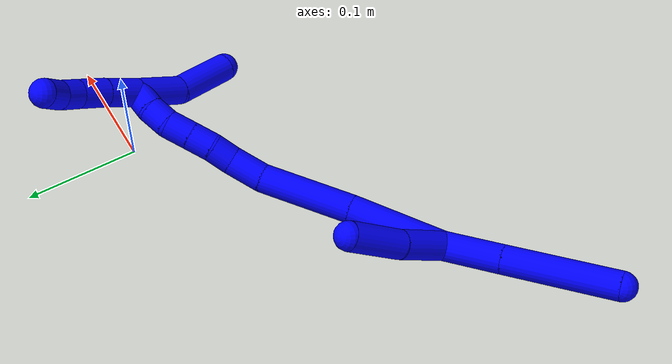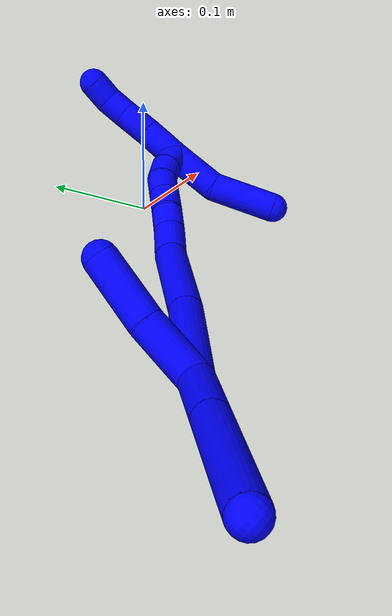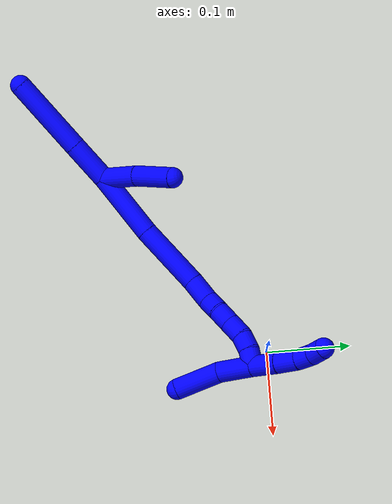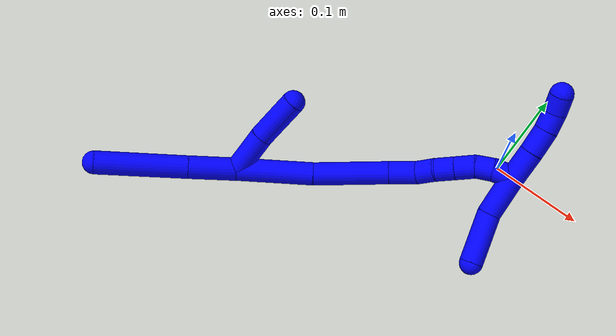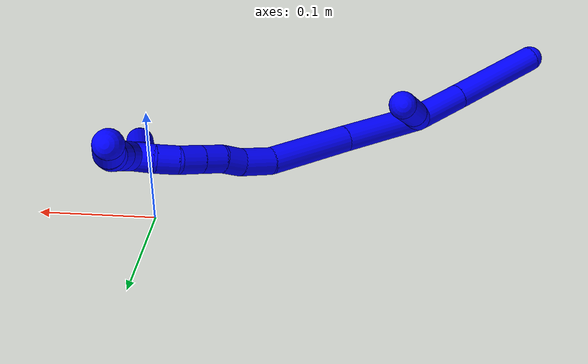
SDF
<sdf version="1.7">
 <world name="default">
  <model name="1">
   <static>0</static>
   <link name="1">
    <collision name="collision-cylinder-e_1_2_8">
     <pose>-0.017516 -0.015907 0.010958 0.96757 -0.736555 -0.400086</pose>
     <geometry><cylinder><radius>0.0125</radius><length>0.05215</length></cylinder></geometry>
     <surface>
      <friction><ode><mu>1.16</mu><mu2>1.16</mu2><slip1>0</slip1><slip2>0</slip2></ode></friction>
      <contact><ode><kp>1e+06</kp><kd>1</kd><max_vel>0</max_vel><min_depth>0.001</min_depth></ode></contact>
     </surface>
    </collision>
    <visual name="visual-cylinder-e_1_2_8">
     <pose>-0.017516 -0.015907 0.010958 0.96757 -0.736555 -0.400086</pose>
     <geometry><cylinder><radius>0.0125</radius><length>0.05215</length></cylinder></geometry>
     <material><ambient>0 0 1 1</ambient></material>
    </visual>
    <collision name="collision-cylinder-e_2_8_6">
     <pose>-0.06829 -0.061553 0.041992 0.977001 -0.747485 -0.41097</pose>
     <geometry><cylinder><radius>0.0125</radius><length>0.09785</length></cylinder></geometry>
     <surface>
      <friction><ode><mu>1.16</mu><mu2>1.16</mu2><slip1>0</slip1><slip2>0</slip2></ode></friction>
      <contact><ode><kp>1e+06</kp><kd>1</kd><max_vel>0</max_vel><min_depth>0.001</min_depth></ode></contact>
     </surface>
    </collision>
    <visual name="visual-cylinder-e_2_8_6">
     <pose>-0.06829 -0.061553 0.041992 0.977001 -0.747485 -0.41097</pose>
     <geometry><cylinder><radius>0.0125</radius><length>0.09785</length></cylinder></geometry>
     <material><ambient>0 0 1 1</ambient></material>
    </visual>
    <collision name="collision-cylinder-e_1_2_9">
     <pose>0.000178 0.003471 -0.023557 -2.99528 0.007477 -0.101935</pose>
     <geometry><cylinder><radius>0.0125</radius><length>0.047624</length></cylinder></geometry>
     <surface>
      <friction><ode><mu>1.16</mu><mu2>1.16</mu2><slip1>0</slip1><slip2>0</slip2></ode></friction>
      <contact><ode><kp>1e+06</kp><kd>1</kd><max_vel>0</max_vel><min_depth>0.001</min_depth></ode></contact>
     </surface>
    </collision>
    <visual name="visual-cylinder-e_1_2_9">
     <pose>0.000178 0.003471 -0.023557 -2.99528 0.007477 -0.101935</pose>
     <geometry><cylinder><radius>0.0125</radius><length>0.047624</length></cylinder></geometry>
     <material><ambient>0 0 1 1</ambient></material>
    </visual>
    <collision name="collision-cylinder-e_2_9_5">
     <pose>0.000384 0.013724 -0.072408 -2.87967 0.001083 -0.008225</pose>
     <geometry><cylinder><radius>0.0125</radius><length>0.052376</length></cylinder></geometry>
     <surface>
      <friction><ode><mu>1.16</mu><mu2>1.16</mu2><slip1>0</slip1><slip2>0</slip2></ode></friction>
      <contact><ode><kp>1e+06</kp><kd>1</kd><max_vel>0</max_vel><min_depth>0.001</min_depth></ode></contact>
     </surface>
    </collision>
    <visual name="visual-cylinder-e_2_9_5">
     <pose>0.000384 0.013724 -0.072408 -2.87967 0.001083 -0.008225</pose>
     <geometry><cylinder><radius>0.0125</radius><length>0.052376</length></cylinder></geometry>
     <material><ambient>0 0 1 1</ambient></material>
    </visual>
    <collision name="collision-cylinder-e_1_2_10">
     <pose>0.022192 0.029916 -0.018893 -2.13407 0.560178 -0.961979</pose>
     <geometry><cylinder><radius>0.0125</radius><length>0.083531</length></cylinder></geometry>
     <surface>
      <friction><ode><mu>1.16</mu><mu2>1.16</mu2><slip1>0</slip1><slip2>0</slip2></ode></friction>
      <contact><ode><kp>1e+06</kp><kd>1</kd><max_vel>0</max_vel><min_depth>0.001</min_depth></ode></contact>
     </surface>
    </collision>
    <visual name="visual-cylinder-e_1_2_10">
     <pose>0.022192 0.029916 -0.018893 -2.13407 0.560178 -0.961979</pose>
     <geometry><cylinder><radius>0.0125</radius><length>0.083531</length></cylinder></geometry>
     <material><ambient>0 0 1 1</ambient></material>
    </visual>
    <collision name="collision-cylinder-e_2_10_11">
     <pose>0.065736 0.087653 -0.059073 -2.22394 0.547401 -1.03361</pose>
     <geometry><cylinder><radius>0.0125</radius><length>0.082053</length></cylinder></geometry>
     <surface>
      <friction><ode><mu>1.16</mu><mu2>1.16</mu2><slip1>0</slip1><slip2>0</slip2></ode></friction>
      <contact><ode><kp>1e+06</kp><kd>1</kd><max_vel>0</max_vel><min_depth>0.001</min_depth></ode></contact>
     </surface>
    </collision>
    <visual name="visual-cylinder-e_2_10_11">
     <pose>0.065736 0.087653 -0.059073 -2.22394 0.547401 -1.03361</pose>
     <geometry><cylinder><radius>0.0125</radius><length>0.082053</length></cylinder></geometry>
     <material><ambient>0 0 1 1</ambient></material>
    </visual>
    <collision name="collision-cylinder-e_3_11_12">
     <pose>0.092022 0.127367 -0.088743 -2.18471 0.32692 -0.615797</pose>
     <geometry><cylinder><radius>0.0125</radius><length>0.030725</length></cylinder></geometry>
     <surface>
      <friction><ode><mu>1.16</mu><mu2>1.16</mu2><slip1>0</slip1><slip2>0</slip2></ode></friction>
      <contact><ode><kp>1e+06</kp><kd>1</kd><max_vel>0</max_vel><min_depth>0.001</min_depth></ode></contact>
     </surface>
    </collision>
    <visual name="visual-cylinder-e_3_11_12">
     <pose>0.092022 0.127367 -0.088743 -2.18471 0.32692 -0.615797</pose>
     <geometry><cylinder><radius>0.0125</radius><length>0.030725</length></cylinder></geometry>
     <material><ambient>0 0 1 1</ambient></material>
    </visual>
    <collision name="collision-cylinder-e_4_12_13">
     <pose>0.098087 0.146701 -0.103894 -2.30896 0.111927 -0.252056</pose>
     <geometry><cylinder><radius>0.0125</radius><length>0.020249</length></cylinder></geometry>
     <surface>
      <friction><ode><mu>1.16</mu><mu2>1.16</mu2><slip1>0</slip1><slip2>0</slip2></ode></friction>
      <contact><ode><kp>1e+06</kp><kd>1</kd><max_vel>0</max_vel><min_depth>0.001</min_depth></ode></contact>
     </surface>
    </collision>
    <visual name="visual-cylinder-e_4_12_13">
     <pose>0.098087 0.146701 -0.103894 -2.30896 0.111927 -0.252056</pose>
     <geometry><cylinder><radius>0.0125</radius><length>0.020249</length></cylinder></geometry>
     <material><ambient>0 0 1 1</ambient></material>
    </visual>
    <collision name="collision-cylinder-e_5_13_14">
     <pose>0.102333 0.161938 -0.117103 -2.26124 0.298958 -0.61896</pose>
     <geometry><cylinder><radius>0.0125</radius><length>0.021158</length></cylinder></geometry>
     <surface>
      <friction><ode><mu>1.16</mu><mu2>1.16</mu2><slip1>0</slip1><slip2>0</slip2></ode></friction>
      <contact><ode><kp>1e+06</kp><kd>1</kd><max_vel>0</max_vel><min_depth>0.001</min_depth></ode></contact>
     </surface>
    </collision>
    <visual name="visual-cylinder-e_5_13_14">
     <pose>0.102333 0.161938 -0.117103 -2.26124 0.298958 -0.61896</pose>
     <geometry><cylinder><radius>0.0125</radius><length>0.021158</length></cylinder></geometry>
     <material><ambient>0 0 1 1</ambient></material>
    </visual>
    <collision name="collision-cylinder-e_6_14_15">
     <pose>0.108758 0.177846 -0.130286 -2.26429 0.303878 -0.63097</pose>
     <geometry><cylinder><radius>0.0125</radius><length>0.022114</length></cylinder></geometry>
     <surface>
      <friction><ode><mu>1.16</mu><mu2>1.16</mu2><slip1>0</slip1><slip2>0</slip2></ode></friction>
      <contact><ode><kp>1e+06</kp><kd>1</kd><max_vel>0</max_vel><min_depth>0.001</min_depth></ode></contact>
     </surface>
    </collision>
    <visual name="visual-cylinder-e_6_14_15">
     <pose>0.108758 0.177846 -0.130286 -2.26429 0.303878 -0.63097</pose>
     <geometry><cylinder><radius>0.0125</radius><length>0.022114</length></cylinder></geometry>
     <material><ambient>0 0 1 1</ambient></material>
    </visual>
    <collision name="collision-cylinder-e_7_15_16">
     <pose>0.114678 0.19485 -0.140872 -1.97871 0.263448 -0.397849</pose>
     <geometry><cylinder><radius>0.0125</radius><length>0.020063</length></cylinder></geometry>
     <surface>
      <friction><ode><mu>1.16</mu><mu2>1.16</mu2><slip1>0</slip1><slip2>0</slip2></ode></friction>
      <contact><ode><kp>1e+06</kp><kd>1</kd><max_vel>0</max_vel><min_depth>0.001</min_depth></ode></contact>
     </surface>
    </collision>
    <visual name="visual-cylinder-e_7_15_16">
     <pose>0.114678 0.19485 -0.140872 -1.97871 0.263448 -0.397849</pose>
     <geometry><cylinder><radius>0.0125</radius><length>0.020063</length></cylinder></geometry>
     <material><ambient>0 0 1 1</ambient></material>
    </visual>
    <collision name="collision-cylinder-e_8_16_1">
     <pose>0.119567 0.213383 -0.14642 -1.74588 0.228389 -0.271839</pose>
     <geometry><cylinder><radius>0.0125</radius><length>0.020107</length></cylinder></geometry>
     <surface>
      <friction><ode><mu>1.16</mu><mu2>1.16</mu2><slip1>0</slip1><slip2>0</slip2></ode></friction>
      <contact><ode><kp>1e+06</kp><kd>1</kd><max_vel>0</max_vel><min_depth>0.001</min_depth></ode></contact>
     </surface>
    </collision>
    <visual name="visual-cylinder-e_8_16_1">
     <pose>0.119567 0.213383 -0.14642 -1.74588 0.228389 -0.271839</pose>
     <geometry><cylinder><radius>0.0125</radius><length>0.020107</length></cylinder></geometry>
     <material><ambient>0 0 1 1</ambient></material>
    </visual>
    <collision name="collision-cylinder-e_1_1_17">
     <pose>0.121469 0.22319 -0.125755 -0.007333 -0.016724 6.1e-05</pose>
     <geometry><cylinder><radius>0.0125</radius><length>0.04475</length></cylinder></geometry>
     <surface>
      <friction><ode><mu>1.16</mu><mu2>1.16</mu2><slip1>0</slip1><slip2>0</slip2></ode></friction>
      <contact><ode><kp>1e+06</kp><kd>1</kd><max_vel>0</max_vel><min_depth>0.001</min_depth></ode></contact>
     </surface>
    </collision>
    <visual name="visual-cylinder-e_1_1_17">
     <pose>0.121469 0.22319 -0.125755 -0.007333 -0.016724 6.1e-05</pose>
     <geometry><cylinder><radius>0.0125</radius><length>0.04475</length></cylinder></geometry>
     <material><ambient>0 0 1 1</ambient></material>
    </visual>
    <collision name="collision-cylinder-e_2_17_4">
     <pose>0.11642 0.231851 -0.077517 -0.317363 -0.170048 0.027276</pose>
     <geometry><cylinder><radius>0.0125</radius><length>0.05525</length></cylinder></geometry>
     <surface>
      <friction><ode><mu>1.16</mu><mu2>1.16</mu2><slip1>0</slip1><slip2>0</slip2></ode></friction>
      <contact><ode><kp>1e+06</kp><kd>1</kd><max_vel>0</max_vel><min_depth>0.001</min_depth></ode></contact>
     </surface>
    </collision>
    <visual name="visual-cylinder-e_2_17_4">
     <pose>0.11642 0.231851 -0.077517 -0.317363 -0.170048 0.027276</pose>
     <geometry><cylinder><radius>0.0125</radius><length>0.05525</length></cylinder></geometry>
     <material><ambient>0 0 1 1</ambient></material>
    </visual>
    <collision name="collision-cylinder-e_1_1_18">
     <pose>0.122066 0.223732 -0.164499 -3.09848 0.013572 -0.609798</pose>
     <geometry><cylinder><radius>0.0125</radius><length>0.032778</length></cylinder></geometry>
     <surface>
      <friction><ode><mu>1.16</mu><mu2>1.16</mu2><slip1>0</slip1><slip2>0</slip2></ode></friction>
      <contact><ode><kp>1e+06</kp><kd>1</kd><max_vel>0</max_vel><min_depth>0.001</min_depth></ode></contact>
     </surface>
    </collision>
    <visual name="visual-cylinder-e_1_1_18">
     <pose>0.122066 0.223732 -0.164499 -3.09848 0.013572 -0.609798</pose>
     <geometry><cylinder><radius>0.0125</radius><length>0.032778</length></cylinder></geometry>
     <material><ambient>0 0 1 1</ambient></material>
    </visual>
    <collision name="collision-cylinder-e_2_18_19">
     <pose>0.122549 0.224367 -0.194387 3.13627 0.019335 2.60448</pose>
     <geometry><cylinder><radius>0.0125</radius><length>0.027038</length></cylinder></geometry>
     <surface>
      <friction><ode><mu>1.16</mu><mu2>1.16</mu2><slip1>0</slip1><slip2>0</slip2></ode></friction>
      <contact><ode><kp>1e+06</kp><kd>1</kd><max_vel>0</max_vel><min_depth>0.001</min_depth></ode></contact>
     </surface>
    </collision>
    <visual name="visual-cylinder-e_2_18_19">
     <pose>0.122549 0.224367 -0.194387 3.13627 0.019335 2.60448</pose>
     <geometry><cylinder><radius>0.0125</radius><length>0.027038</length></cylinder></geometry>
     <material><ambient>0 0 1 1</ambient></material>
    </visual>
    <collision name="collision-cylinder-e_3_19_20">
     <pose>0.121604 0.223399 -0.217812 3.05139 -0.120728 -1.8588</pose>
     <geometry><cylinder><radius>0.0125</radius><length>0.020044</length></cylinder></geometry>
     <surface>
      <friction><ode><mu>1.16</mu><mu2>1.16</mu2><slip1>0</slip1><slip2>0</slip2></ode></friction>
      <contact><ode><kp>1e+06</kp><kd>1</kd><max_vel>0</max_vel><min_depth>0.001</min_depth></ode></contact>
     </surface>
    </collision>
    <visual name="visual-cylinder-e_3_19_20">
     <pose>0.121604 0.223399 -0.217812 3.05139 -0.120728 -1.8588</pose>
     <geometry><cylinder><radius>0.0125</radius><length>0.020044</length></cylinder></geometry>
     <material><ambient>0 0 1 1</ambient></material>
    </visual>
    <collision name="collision-cylinder-e_4_20_3">
     <pose>0.116711 0.221653 -0.237053 3.05077 -0.374688 -2.67104</pose>
     <geometry><cylinder><radius>0.0125</radius><length>0.02014</length></cylinder></geometry>
     <surface>
      <friction><ode><mu>1.16</mu><mu2>1.16</mu2><slip1>0</slip1><slip2>0</slip2></ode></friction>
      <contact><ode><kp>1e+06</kp><kd>1</kd><max_vel>0</max_vel><min_depth>0.001</min_depth></ode></contact>
     </surface>
    </collision>
    <visual name="visual-cylinder-e_4_20_3">
     <pose>0.116711 0.221653 -0.237053 3.05077 -0.374688 -2.67104</pose>
     <geometry><cylinder><radius>0.0125</radius><length>0.02014</length></cylinder></geometry>
     <material><ambient>0 0 1 1</ambient></material>
    </visual>
    <collision name="collision-sphere-3">
     <pose>0.113026 0.220803 -0.246386 0 -0 0</pose>
     <geometry><sphere><radius>0.0125</radius></sphere></geometry>
     <surface>
      <friction><ode><mu>1.16</mu><mu2>1.16</mu2><slip1>0</slip1><slip2>0</slip2></ode></friction>
      <contact><ode><kp>1e+06</kp><kd>1</kd><max_vel>0</max_vel><min_depth>0.001</min_depth></ode></contact>
     </surface>
    </collision>
    <visual name="visual-sphere-3">
     <pose>0.113026 0.220803 -0.246386 0 -0 0</pose>
     <geometry><sphere><radius>0.0125</radius></sphere></geometry>
     <material><ambient>0 0 1 1</ambient></material>
    </visual>
    <collision name="collision-sphere-20">
     <pose>0.120397 0.222503 -0.227721 0 -0 0</pose>
     <geometry><sphere><radius>0.0125</radius></sphere></geometry>
     <surface>
      <friction><ode><mu>1.16</mu><mu2>1.16</mu2><slip1>0</slip1><slip2>0</slip2></ode></friction>
      <contact><ode><kp>1e+06</kp><kd>1</kd><max_vel>0</max_vel><min_depth>0.001</min_depth></ode></contact>
     </surface>
    </collision>
    <visual name="visual-sphere-20">
     <pose>0.120397 0.222503 -0.227721 0 -0 0</pose>
     <geometry><sphere><radius>0.0125</radius></sphere></geometry>
     <material><ambient>0 0 1 1</ambient></material>
    </visual>
    <collision name="collision-sphere-19">
     <pose>0.122811 0.224295 -0.207904 0 -0 0</pose>
     <geometry><sphere><radius>0.0125</radius></sphere></geometry>
     <surface>
      <friction><ode><mu>1.16</mu><mu2>1.16</mu2><slip1>0</slip1><slip2>0</slip2></ode></friction>
      <contact><ode><kp>1e+06</kp><kd>1</kd><max_vel>0</max_vel><min_depth>0.001</min_depth></ode></contact>
     </surface>
    </collision>
    <visual name="visual-sphere-19">
     <pose>0.122811 0.224295 -0.207904 0 -0 0</pose>
     <geometry><sphere><radius>0.0125</radius></sphere></geometry>
     <material><ambient>0 0 1 1</ambient></material>
    </visual>
    <collision name="collision-sphere-10">
     <pose>0.044383 0.059832 -0.037785 0 -0 0</pose>
     <geometry><sphere><radius>0.0125</radius></sphere></geometry>
     <surface>
      <friction><ode><mu>1.16</mu><mu2>1.16</mu2><slip1>0</slip1><slip2>0</slip2></ode></friction>
      <contact><ode><kp>1e+06</kp><kd>1</kd><max_vel>0</max_vel><min_depth>0.001</min_depth></ode></contact>
     </surface>
    </collision>
    <visual name="visual-sphere-10">
     <pose>0.044383 0.059832 -0.037785 0 -0 0</pose>
     <geometry><sphere><radius>0.0125</radius></sphere></geometry>
     <material><ambient>0 0 1 1</ambient></material>
    </visual>
    <collision name="collision-sphere-5">
     <pose>0.000413 0.020505 -0.097703 0 -0 0</pose>
     <geometry><sphere><radius>0.0125</radius></sphere></geometry>
     <surface>
      <friction><ode><mu>1.16</mu><mu2>1.16</mu2><slip1>0</slip1><slip2>0</slip2></ode></friction>
      <contact><ode><kp>1e+06</kp><kd>1</kd><max_vel>0</max_vel><min_depth>0.001</min_depth></ode></contact>
     </surface>
    </collision>
    <visual name="visual-sphere-5">
     <pose>0.000413 0.020505 -0.097703 0 -0 0</pose>
     <geometry><sphere><radius>0.0125</radius></sphere></geometry>
     <material><ambient>0 0 1 1</ambient></material>
    </visual>
    <collision name="collision-sphere-6">
     <pose>-0.101549 -0.091293 0.062068 0 -0 0</pose>
     <geometry><sphere><radius>0.0125</radius></sphere></geometry>
     <surface>
      <friction><ode><mu>1.16</mu><mu2>1.16</mu2><slip1>0</slip1><slip2>0</slip2></ode></friction>
      <contact><ode><kp>1e+06</kp><kd>1</kd><max_vel>0</max_vel><min_depth>0.001</min_depth></ode></contact>
     </surface>
    </collision>
    <visual name="visual-sphere-6">
     <pose>-0.101549 -0.091293 0.062068 0 -0 0</pose>
     <geometry><sphere><radius>0.0125</radius></sphere></geometry>
     <material><ambient>0 0 1 1</ambient></material>
    </visual>
    <collision name="collision-sphere-9">
     <pose>0.000356 0.006943 -0.047113 0 -0 0</pose>
     <geometry><sphere><radius>0.0125</radius></sphere></geometry>
     <surface>
      <friction><ode><mu>1.16</mu><mu2>1.16</mu2><slip1>0</slip1><slip2>0</slip2></ode></friction>
      <contact><ode><kp>1e+06</kp><kd>1</kd><max_vel>0</max_vel><min_depth>0.001</min_depth></ode></contact>
     </surface>
    </collision>
    <visual name="visual-sphere-9">
     <pose>0.000356 0.006943 -0.047113 0 -0 0</pose>
     <geometry><sphere><radius>0.0125</radius></sphere></geometry>
     <material><ambient>0 0 1 1</ambient></material>
    </visual>
    <collision name="collision-sphere-2">
     <geometry><sphere><radius>0.0125</radius></sphere></geometry>
     <surface>
      <friction><ode><mu>1.16</mu><mu2>1.16</mu2><slip1>0</slip1><slip2>0</slip2></ode></friction>
      <contact><ode><kp>1e+06</kp><kd>1</kd><max_vel>0</max_vel><min_depth>0.001</min_depth></ode></contact>
     </surface>
    </collision>
    <visual name="visual-sphere-2">
     <geometry><sphere><radius>0.0125</radius></sphere></geometry>
     <material><ambient>0 0 1 1</ambient></material>
    </visual>
    <collision name="collision-sphere-8">
     <pose>-0.035031 -0.031814 0.021916 0 -0 0</pose>
     <geometry><sphere><radius>0.0125</radius></sphere></geometry>
     <surface>
      <friction><ode><mu>1.16</mu><mu2>1.16</mu2><slip1>0</slip1><slip2>0</slip2></ode></friction>
      <contact><ode><kp>1e+06</kp><kd>1</kd><max_vel>0</max_vel><min_depth>0.001</min_depth></ode></contact>
     </surface>
    </collision>
    <visual name="visual-sphere-8">
     <pose>-0.035031 -0.031814 0.021916 0 -0 0</pose>
     <geometry><sphere><radius>0.0125</radius></sphere></geometry>
     <material><ambient>0 0 1 1</ambient></material>
    </visual>
    <collision name="collision-sphere-11">
     <pose>0.087089 0.115474 -0.080361 0 -0 0</pose>
     <geometry><sphere><radius>0.0125</radius></sphere></geometry>
     <surface>
      <friction><ode><mu>1.16</mu><mu2>1.16</mu2><slip1>0</slip1><slip2>0</slip2></ode></friction>
      <contact><ode><kp>1e+06</kp><kd>1</kd><max_vel>0</max_vel><min_depth>0.001</min_depth></ode></contact>
     </surface>
    </collision>
    <visual name="visual-sphere-11">
     <pose>0.087089 0.115474 -0.080361 0 -0 0</pose>
     <geometry><sphere><radius>0.0125</radius></sphere></geometry>
     <material><ambient>0 0 1 1</ambient></material>
    </visual>
    <collision name="collision-sphere-12">
     <pose>0.096956 0.139259 -0.097124 0 -0 0</pose>
     <geometry><sphere><radius>0.0125</radius></sphere></geometry>
     <surface>
      <friction><ode><mu>1.16</mu><mu2>1.16</mu2><slip1>0</slip1><slip2>0</slip2></ode></friction>
      <contact><ode><kp>1e+06</kp><kd>1</kd><max_vel>0</max_vel><min_depth>0.001</min_depth></ode></contact>
     </surface>
    </collision>
    <visual name="visual-sphere-12">
     <pose>0.096956 0.139259 -0.097124 0 -0 0</pose>
     <geometry><sphere><radius>0.0125</radius></sphere></geometry>
     <material><ambient>0 0 1 1</ambient></material>
    </visual>
    <collision name="collision-sphere-13">
     <pose>0.099217 0.154143 -0.110664 0 -0 0</pose>
     <geometry><sphere><radius>0.0125</radius></sphere></geometry>
     <surface>
      <friction><ode><mu>1.16</mu><mu2>1.16</mu2><slip1>0</slip1><slip2>0</slip2></ode></friction>
      <contact><ode><kp>1e+06</kp><kd>1</kd><max_vel>0</max_vel><min_depth>0.001</min_depth></ode></contact>
     </surface>
    </collision>
    <visual name="visual-sphere-13">
     <pose>0.099217 0.154143 -0.110664 0 -0 0</pose>
     <geometry><sphere><radius>0.0125</radius></sphere></geometry>
     <material><ambient>0 0 1 1</ambient></material>
    </visual>
    <collision name="collision-sphere-14">
     <pose>0.105449 0.169732 -0.123542 0 -0 0</pose>
     <geometry><sphere><radius>0.0125</radius></sphere></geometry>
     <surface>
      <friction><ode><mu>1.16</mu><mu2>1.16</mu2><slip1>0</slip1><slip2>0</slip2></ode></friction>
      <contact><ode><kp>1e+06</kp><kd>1</kd><max_vel>0</max_vel><min_depth>0.001</min_depth></ode></contact>
     </surface>
    </collision>
    <visual name="visual-sphere-14">
     <pose>0.105449 0.169732 -0.123542 0 -0 0</pose>
     <geometry><sphere><radius>0.0125</radius></sphere></geometry>
     <material><ambient>0 0 1 1</ambient></material>
    </visual>
    <collision name="collision-sphere-15">
     <pose>0.112066 0.185959 -0.13703 0 -0 0</pose>
     <geometry><sphere><radius>0.0125</radius></sphere></geometry>
     <surface>
      <friction><ode><mu>1.16</mu><mu2>1.16</mu2><slip1>0</slip1><slip2>0</slip2></ode></friction>
      <contact><ode><kp>1e+06</kp><kd>1</kd><max_vel>0</max_vel><min_depth>0.001</min_depth></ode></contact>
     </surface>
    </collision>
    <visual name="visual-sphere-15">
     <pose>0.112066 0.185959 -0.13703 0 -0 0</pose>
     <geometry><sphere><radius>0.0125</radius></sphere></geometry>
     <material><ambient>0 0 1 1</ambient></material>
    </visual>
    <collision name="collision-sphere-16">
     <pose>0.117291 0.20374 -0.144715 0 -0 0</pose>
     <geometry><sphere><radius>0.0125</radius></sphere></geometry>
     <surface>
      <friction><ode><mu>1.16</mu><mu2>1.16</mu2><slip1>0</slip1><slip2>0</slip2></ode></friction>
      <contact><ode><kp>1e+06</kp><kd>1</kd><max_vel>0</max_vel><min_depth>0.001</min_depth></ode></contact>
     </surface>
    </collision>
    <visual name="visual-sphere-16">
     <pose>0.117291 0.20374 -0.144715 0 -0 0</pose>
     <geometry><sphere><radius>0.0125</radius></sphere></geometry>
     <material><ambient>0 0 1 1</ambient></material>
    </visual>
    <collision name="collision-sphere-1">
     <pose>0.121843 0.223026 -0.148126 0 -0 0</pose>
     <geometry><sphere><radius>0.0125</radius></sphere></geometry>
     <surface>
      <friction><ode><mu>1.16</mu><mu2>1.16</mu2><slip1>0</slip1><slip2>0</slip2></ode></friction>
      <contact><ode><kp>1e+06</kp><kd>1</kd><max_vel>0</max_vel><min_depth>0.001</min_depth></ode></contact>
     </surface>
    </collision>
    <visual name="visual-sphere-1">
     <pose>0.121843 0.223026 -0.148126 0 -0 0</pose>
     <geometry><sphere><radius>0.0125</radius></sphere></geometry>
     <material><ambient>0 0 1 1</ambient></material>
    </visual>
    <collision name="collision-sphere-18">
     <pose>0.122288 0.224439 -0.180871 0 -0 0</pose>
     <geometry><sphere><radius>0.0125</radius></sphere></geometry>
     <surface>
      <friction><ode><mu>1.16</mu><mu2>1.16</mu2><slip1>0</slip1><slip2>0</slip2></ode></friction>
      <contact><ode><kp>1e+06</kp><kd>1</kd><max_vel>0</max_vel><min_depth>0.001</min_depth></ode></contact>
     </surface>
    </collision>
    <visual name="visual-sphere-18">
     <pose>0.122288 0.224439 -0.180871 0 -0 0</pose>
     <geometry><sphere><radius>0.0125</radius></sphere></geometry>
     <material><ambient>0 0 1 1</ambient></material>
    </visual>
    <collision name="collision-sphere-17">
     <pose>0.121095 0.223354 -0.103384 0 -0 0</pose>
     <geometry><sphere><radius>0.0125</radius></sphere></geometry>
     <surface>
      <friction><ode><mu>1.16</mu><mu2>1.16</mu2><slip1>0</slip1><slip2>0</slip2></ode></friction>
      <contact><ode><kp>1e+06</kp><kd>1</kd><max_vel>0</max_vel><min_depth>0.001</min_depth></ode></contact>
     </surface>
    </collision>
    <visual name="visual-sphere-17">
     <pose>0.121095 0.223354 -0.103384 0 -0 0</pose>
     <geometry><sphere><radius>0.0125</radius></sphere></geometry>
     <material><ambient>0 0 1 1</ambient></material>
    </visual>
    <collision name="collision-sphere-4">
     <pose>0.111745 0.240347 -0.05165 0 -0 0</pose>
     <geometry><sphere><radius>0.0125</radius></sphere></geometry>
     <surface>
      <friction><ode><mu>1.16</mu><mu2>1.16</mu2><slip1>0</slip1><slip2>0</slip2></ode></friction>
      <contact><ode><kp>1e+06</kp><kd>1</kd><max_vel>0</max_vel><min_depth>0.001</min_depth></ode></contact>
     </surface>
    </collision>
    <visual name="visual-sphere-4">
     <pose>0.111745 0.240347 -0.05165 0 -0 0</pose>
     <geometry><sphere><radius>0.0125</radius></sphere></geometry>
     <material><ambient>0 0 1 1</ambient></material>
    </visual>
    <inertial>
     <pose>0.05032 0.095073 -0.069756 0 -0 0</pose>
     <mass>0.75</mass>
     <inertia>
      <ixx>6.1e-05</ixx>
      <ixy>0</ixy>
      <ixz>0</ixz>
      <iyy>-2.3e-05</iyy>
      <iyz>0</iyz>
      <izz>-3.4e-05</izz>
     </inertia>
    </inertial>
   </link>
   <pose>-0.223502 -0.17807 0.012456 2.6521 0.958203 1.02562</pose>
  </model>
 </world>
</sdf>
